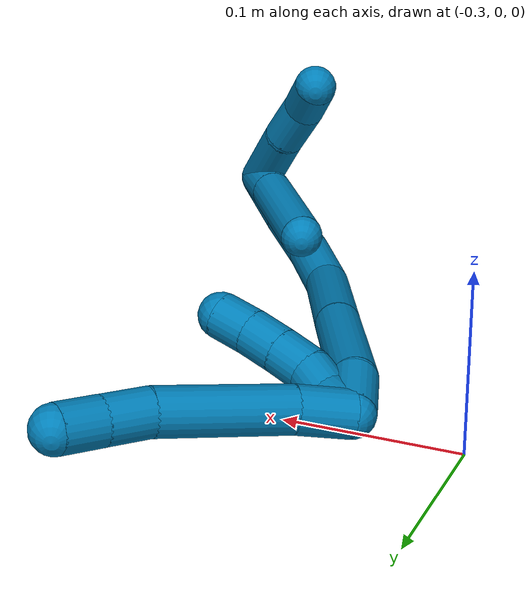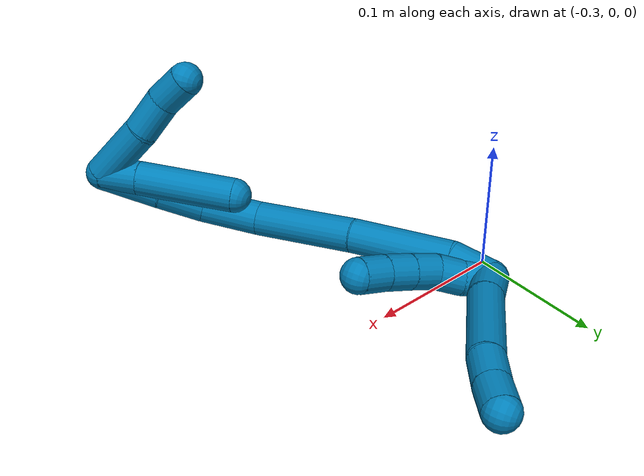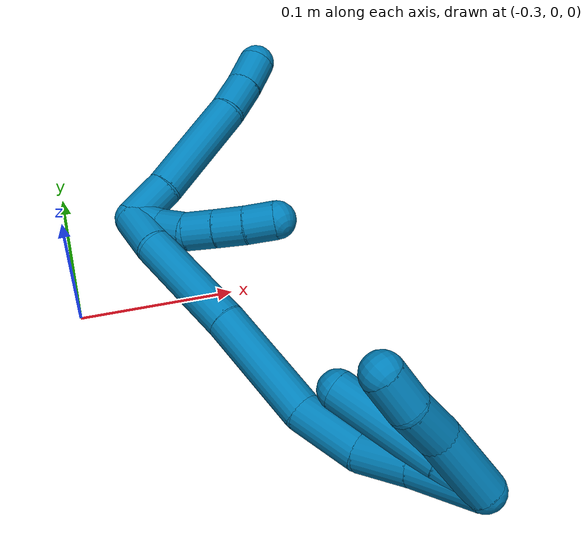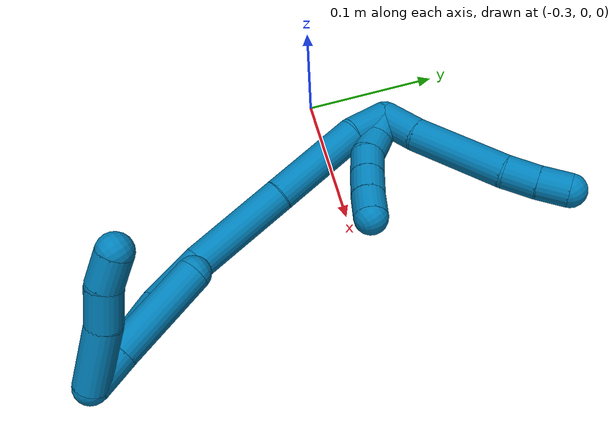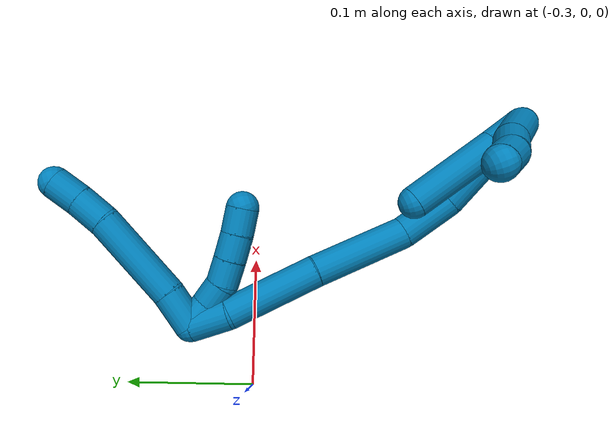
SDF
<sdf version="1.7">
 <world name="default">
  <model name="9">
   <static>0</static>
   <link name="9">
    <collision name="collision-cylinder-e_1_2_8">
     <pose>-0.009523 0.011007 -0.003048 -1.84097 -0.694996 0.888751</pose>
     <geometry><cylinder><radius>0.0125</radius><length>0.029742</length></cylinder></geometry>
     <surface>
      <friction><ode><mu>1.16</mu><mu2>1.16</mu2><slip1>0</slip1><slip2>0</slip2></ode></friction>
      <contact><ode><kp>1e+06</kp><kd>1</kd><max_vel>0</max_vel><min_depth>0.001</min_depth></ode></contact>
     </surface>
    </collision>
    <visual name="visual-cylinder-e_1_2_8">
     <pose>-0.009523 0.011007 -0.003048 -1.84097 -0.694996 0.888751</pose>
     <geometry><cylinder><radius>0.0125</radius><length>0.029742</length></cylinder></geometry>
     <material><ambient>0 0.490196 0.709804 1</ambient></material>
    </visual>
    <collision name="collision-cylinder-e_2_8_9">
     <pose>-0.040657 0.048295 -0.018114 -1.99967 -0.64213 0.955515</pose>
     <geometry><cylinder><radius>0.0125</radius><length>0.072169</length></cylinder></geometry>
     <surface>
      <friction><ode><mu>1.16</mu><mu2>1.16</mu2><slip1>0</slip1><slip2>0</slip2></ode></friction>
      <contact><ode><kp>1e+06</kp><kd>1</kd><max_vel>0</max_vel><min_depth>0.001</min_depth></ode></contact>
     </surface>
    </collision>
    <visual name="visual-cylinder-e_2_8_9">
     <pose>-0.040657 0.048295 -0.018114 -1.99967 -0.64213 0.955515</pose>
     <geometry><cylinder><radius>0.0125</radius><length>0.072169</length></cylinder></geometry>
     <material><ambient>0 0.490196 0.709804 1</ambient></material>
    </visual>
    <collision name="collision-cylinder-e_3_9_10">
     <pose>-0.068457 0.083543 -0.036025 -2.15227 -0.523082 0.921282</pose>
     <geometry><cylinder><radius>0.0125</radius><length>0.024776</length></cylinder></geometry>
     <surface>
      <friction><ode><mu>1.16</mu><mu2>1.16</mu2><slip1>0</slip1><slip2>0</slip2></ode></friction>
      <contact><ode><kp>1e+06</kp><kd>1</kd><max_vel>0</max_vel><min_depth>0.001</min_depth></ode></contact>
     </surface>
    </collision>
    <visual name="visual-cylinder-e_3_9_10">
     <pose>-0.068457 0.083543 -0.036025 -2.15227 -0.523082 0.921282</pose>
     <geometry><cylinder><radius>0.0125</radius><length>0.024776</length></cylinder></geometry>
     <material><ambient>0 0.490196 0.709804 1</ambient></material>
    </visual>
    <collision name="collision-cylinder-e_4_10_6">
     <pose>-0.080659 0.100344 -0.048112 -2.23975 -0.542116 1.04208</pose>
     <geometry><cylinder><radius>0.0125</radius><length>0.023314</length></cylinder></geometry>
     <surface>
      <friction><ode><mu>1.16</mu><mu2>1.16</mu2><slip1>0</slip1><slip2>0</slip2></ode></friction>
      <contact><ode><kp>1e+06</kp><kd>1</kd><max_vel>0</max_vel><min_depth>0.001</min_depth></ode></contact>
     </surface>
    </collision>
    <visual name="visual-cylinder-e_4_10_6">
     <pose>-0.080659 0.100344 -0.048112 -2.23975 -0.542116 1.04208</pose>
     <geometry><cylinder><radius>0.0125</radius><length>0.023314</length></cylinder></geometry>
     <material><ambient>0 0.490196 0.709804 1</ambient></material>
    </visual>
    <collision name="collision-cylinder-e_1_2_11">
     <pose>-0.002181 0.004626 0.008593 -0.493883 -0.219875 0.055638</pose>
     <geometry><cylinder><radius>0.0125</radius><length>0.02</length></cylinder></geometry>
     <surface>
      <friction><ode><mu>1.16</mu><mu2>1.16</mu2><slip1>0</slip1><slip2>0</slip2></ode></friction>
      <contact><ode><kp>1e+06</kp><kd>1</kd><max_vel>0</max_vel><min_depth>0.001</min_depth></ode></contact>
     </surface>
    </collision>
    <visual name="visual-cylinder-e_1_2_11">
     <pose>-0.002181 0.004626 0.008593 -0.493883 -0.219875 0.055638</pose>
     <geometry><cylinder><radius>0.0125</radius><length>0.02</length></cylinder></geometry>
     <material><ambient>0 0.490196 0.709804 1</ambient></material>
    </visual>
    <collision name="collision-cylinder-e_2_11_12">
     <pose>-0.008868 0.012243 0.025598 -0.341565 -0.46739 0.082061</pose>
     <geometry><cylinder><radius>0.0125</radius><length>0.02</length></cylinder></geometry>
     <surface>
      <friction><ode><mu>1.16</mu><mu2>1.16</mu2><slip1>0</slip1><slip2>0</slip2></ode></friction>
      <contact><ode><kp>1e+06</kp><kd>1</kd><max_vel>0</max_vel><min_depth>0.001</min_depth></ode></contact>
     </surface>
    </collision>
    <visual name="visual-cylinder-e_2_11_12">
     <pose>-0.008868 0.012243 0.025598 -0.341565 -0.46739 0.082061</pose>
     <geometry><cylinder><radius>0.0125</radius><length>0.02</length></cylinder></geometry>
     <material><ambient>0 0.490196 0.709804 1</ambient></material>
    </visual>
    <collision name="collision-cylinder-e_3_12_13">
     <pose>-0.018869 0.020595 0.040416 -0.696838 -0.581864 0.216675</pose>
     <geometry><cylinder><radius>0.0125</radius><length>0.02</length></cylinder></geometry>
     <surface>
      <friction><ode><mu>1.16</mu><mu2>1.16</mu2><slip1>0</slip1><slip2>0</slip2></ode></friction>
      <contact><ode><kp>1e+06</kp><kd>1</kd><max_vel>0</max_vel><min_depth>0.001</min_depth></ode></contact>
     </surface>
    </collision>
    <visual name="visual-cylinder-e_3_12_13">
     <pose>-0.018869 0.020595 0.040416 -0.696838 -0.581864 0.216675</pose>
     <geometry><cylinder><radius>0.0125</radius><length>0.02</length></cylinder></geometry>
     <material><ambient>0 0.490196 0.709804 1</ambient></material>
    </visual>
    <collision name="collision-cylinder-e_4_13_14">
     <pose>-0.029848 0.031584 0.05301 -0.737977 -0.580294 0.229898</pose>
     <geometry><cylinder><radius>0.0125</radius><length>0.02</length></cylinder></geometry>
     <surface>
      <friction><ode><mu>1.16</mu><mu2>1.16</mu2><slip1>0</slip1><slip2>0</slip2></ode></friction>
      <contact><ode><kp>1e+06</kp><kd>1</kd><max_vel>0</max_vel><min_depth>0.001</min_depth></ode></contact>
     </surface>
    </collision>
    <visual name="visual-cylinder-e_4_13_14">
     <pose>-0.029848 0.031584 0.05301 -0.737977 -0.580294 0.229898</pose>
     <geometry><cylinder><radius>0.0125</radius><length>0.02</length></cylinder></geometry>
     <material><ambient>0 0.490196 0.709804 1</ambient></material>
    </visual>
    <collision name="collision-cylinder-e_5_14_5">
     <pose>-0.040965 0.043298 0.064782 -0.828511 -0.59861 0.269714</pose>
     <geometry><cylinder><radius>0.0125</radius><length>0.02</length></cylinder></geometry>
     <surface>
      <friction><ode><mu>1.16</mu><mu2>1.16</mu2><slip1>0</slip1><slip2>0</slip2></ode></friction>
      <contact><ode><kp>1e+06</kp><kd>1</kd><max_vel>0</max_vel><min_depth>0.001</min_depth></ode></contact>
     </surface>
    </collision>
    <visual name="visual-cylinder-e_5_14_5">
     <pose>-0.040965 0.043298 0.064782 -0.828511 -0.59861 0.269714</pose>
     <geometry><cylinder><radius>0.0125</radius><length>0.02</length></cylinder></geometry>
     <material><ambient>0 0.490196 0.709804 1</ambient></material>
    </visual>
    <collision name="collision-cylinder-e_1_2_15">
     <pose>-0.000333 -0.001537 0.015199 0.100813 -0.021792 -0.001099</pose>
     <geometry><cylinder><radius>0.0125</radius><length>0.03056</length></cylinder></geometry>
     <surface>
      <friction><ode><mu>1.16</mu><mu2>1.16</mu2><slip1>0</slip1><slip2>0</slip2></ode></friction>
      <contact><ode><kp>1e+06</kp><kd>1</kd><max_vel>0</max_vel><min_depth>0.001</min_depth></ode></contact>
     </surface>
    </collision>
    <visual name="visual-cylinder-e_1_2_15">
     <pose>-0.000333 -0.001537 0.015199 0.100813 -0.021792 -0.001099</pose>
     <geometry><cylinder><radius>0.0125</radius><length>0.03056</length></cylinder></geometry>
     <material><ambient>0 0.490196 0.709804 1</ambient></material>
    </visual>
    <collision name="collision-cylinder-e_2_15_16">
     <pose>0.000985 0.001224 0.066675 -0.117956 0.045164 -0.002667</pose>
     <geometry><cylinder><radius>0.0125</radius><length>0.073137</length></cylinder></geometry>
     <surface>
      <friction><ode><mu>1.16</mu><mu2>1.16</mu2><slip1>0</slip1><slip2>0</slip2></ode></friction>
      <contact><ode><kp>1e+06</kp><kd>1</kd><max_vel>0</max_vel><min_depth>0.001</min_depth></ode></contact>
     </surface>
    </collision>
    <visual name="visual-cylinder-e_2_15_16">
     <pose>0.000985 0.001224 0.066675 -0.117956 0.045164 -0.002667</pose>
     <geometry><cylinder><radius>0.0125</radius><length>0.073137</length></cylinder></geometry>
     <material><ambient>0 0.490196 0.709804 1</ambient></material>
    </visual>
    <collision name="collision-cylinder-e_3_16_17">
     <pose>0.007371 0.010286 0.140033 -0.127746 0.125983 -0.008069</pose>
     <geometry><cylinder><radius>0.0125</radius><length>0.075368</length></cylinder></geometry>
     <surface>
      <friction><ode><mu>1.16</mu><mu2>1.16</mu2><slip1>0</slip1><slip2>0</slip2></ode></friction>
      <contact><ode><kp>1e+06</kp><kd>1</kd><max_vel>0</max_vel><min_depth>0.001</min_depth></ode></contact>
     </surface>
    </collision>
    <visual name="visual-cylinder-e_3_16_17">
     <pose>0.007371 0.010286 0.140033 -0.127746 0.125983 -0.008069</pose>
     <geometry><cylinder><radius>0.0125</radius><length>0.075368</length></cylinder></geometry>
     <material><ambient>0 0.490196 0.709804 1</ambient></material>
    </visual>
    <collision name="collision-cylinder-e_4_17_18">
     <pose>0.009069 0.019126 0.198131 -0.191607 -0.140946 0.013567</pose>
     <geometry><cylinder><radius>0.0125</radius><length>0.043246</length></cylinder></geometry>
     <surface>
      <friction><ode><mu>1.16</mu><mu2>1.16</mu2><slip1>0</slip1><slip2>0</slip2></ode></friction>
      <contact><ode><kp>1e+06</kp><kd>1</kd><max_vel>0</max_vel><min_depth>0.001</min_depth></ode></contact>
     </surface>
    </collision>
    <visual name="visual-cylinder-e_4_17_18">
     <pose>0.009069 0.019126 0.198131 -0.191607 -0.140946 0.013567</pose>
     <geometry><cylinder><radius>0.0125</radius><length>0.043246</length></cylinder></geometry>
     <material><ambient>0 0.490196 0.709804 1</ambient></material>
    </visual>
    <collision name="collision-cylinder-e_5_18_19">
     <pose>-0.001619 0.02716 0.23395 -0.2612 -0.463055 0.061912</pose>
     <geometry><cylinder><radius>0.0125</radius><length>0.034252</length></cylinder></geometry>
     <surface>
      <friction><ode><mu>1.16</mu><mu2>1.16</mu2><slip1>0</slip1><slip2>0</slip2></ode></friction>
      <contact><ode><kp>1e+06</kp><kd>1</kd><max_vel>0</max_vel><min_depth>0.001</min_depth></ode></contact>
     </surface>
    </collision>
    <visual name="visual-cylinder-e_5_18_19">
     <pose>-0.001619 0.02716 0.23395 -0.2612 -0.463055 0.061912</pose>
     <geometry><cylinder><radius>0.0125</radius><length>0.034252</length></cylinder></geometry>
     <material><ambient>0 0.490196 0.709804 1</ambient></material>
    </visual>
    <collision name="collision-cylinder-e_6_19_1">
     <pose>-0.018144 0.035376 0.268112 -0.21657 -0.421002 0.046447</pose>
     <geometry><cylinder><radius>0.0125</radius><length>0.043437</length></cylinder></geometry>
     <surface>
      <friction><ode><mu>1.16</mu><mu2>1.16</mu2><slip1>0</slip1><slip2>0</slip2></ode></friction>
      <contact><ode><kp>1e+06</kp><kd>1</kd><max_vel>0</max_vel><min_depth>0.001</min_depth></ode></contact>
     </surface>
    </collision>
    <visual name="visual-cylinder-e_6_19_1">
     <pose>-0.018144 0.035376 0.268112 -0.21657 -0.421002 0.046447</pose>
     <geometry><cylinder><radius>0.0125</radius><length>0.043437</length></cylinder></geometry>
     <material><ambient>0 0.490196 0.709804 1</ambient></material>
    </visual>
    <collision name="collision-cylinder-e_1_1_20">
     <pose>-0.039816 0.024095 0.275123 2.24221 -0.572617 -1.09537</pose>
     <geometry><cylinder><radius>0.0125</radius><length>0.047232</length></cylinder></geometry>
     <surface>
      <friction><ode><mu>1.16</mu><mu2>1.16</mu2><slip1>0</slip1><slip2>0</slip2></ode></friction>
      <contact><ode><kp>1e+06</kp><kd>1</kd><max_vel>0</max_vel><min_depth>0.001</min_depth></ode></contact>
     </surface>
    </collision>
    <visual name="visual-cylinder-e_1_1_20">
     <pose>-0.039816 0.024095 0.275123 2.24221 -0.572617 -1.09537</pose>
     <geometry><cylinder><radius>0.0125</radius><length>0.047232</length></cylinder></geometry>
     <material><ambient>0 0.490196 0.709804 1</ambient></material>
    </visual>
    <collision name="collision-cylinder-e_2_20_21">
     <pose>-0.059929 -0.002179 0.257124 2.05545 -0.542772 -0.863891</pose>
     <geometry><cylinder><radius>0.0125</radius><length>0.028334</length></cylinder></geometry>
     <surface>
      <friction><ode><mu>1.16</mu><mu2>1.16</mu2><slip1>0</slip1><slip2>0</slip2></ode></friction>
      <contact><ode><kp>1e+06</kp><kd>1</kd><max_vel>0</max_vel><min_depth>0.001</min_depth></ode></contact>
     </surface>
    </collision>
    <visual name="visual-cylinder-e_2_20_21">
     <pose>-0.059929 -0.002179 0.257124 2.05545 -0.542772 -0.863891</pose>
     <geometry><cylinder><radius>0.0125</radius><length>0.028334</length></cylinder></geometry>
     <material><ambient>0 0.490196 0.709804 1</ambient></material>
    </visual>
    <collision name="collision-cylinder-e_3_21_4">
     <pose>-0.073892 -0.020163 0.244223 2.35611 -0.575091 -1.23999</pose>
     <geometry><cylinder><radius>0.0125</radius><length>0.024435</length></cylinder></geometry>
     <surface>
      <friction><ode><mu>1.16</mu><mu2>1.16</mu2><slip1>0</slip1><slip2>0</slip2></ode></friction>
      <contact><ode><kp>1e+06</kp><kd>1</kd><max_vel>0</max_vel><min_depth>0.001</min_depth></ode></contact>
     </surface>
    </collision>
    <visual name="visual-cylinder-e_3_21_4">
     <pose>-0.073892 -0.020163 0.244223 2.35611 -0.575091 -1.23999</pose>
     <geometry><cylinder><radius>0.0125</radius><length>0.024435</length></cylinder></geometry>
     <material><ambient>0 0.490196 0.709804 1</ambient></material>
    </visual>
    <collision name="collision-cylinder-e_1_1_22">
     <pose>-0.025782 0.036065 0.273973 2.88302 0.088436 0.656072</pose>
     <geometry><cylinder><radius>0.0125</radius><length>0.028033</length></cylinder></geometry>
     <surface>
      <friction><ode><mu>1.16</mu><mu2>1.16</mu2><slip1>0</slip1><slip2>0</slip2></ode></friction>
      <contact><ode><kp>1e+06</kp><kd>1</kd><max_vel>0</max_vel><min_depth>0.001</min_depth></ode></contact>
     </surface>
    </collision>
    <visual name="visual-cylinder-e_1_1_22">
     <pose>-0.025782 0.036065 0.273973 2.88302 0.088436 0.656072</pose>
     <geometry><cylinder><radius>0.0125</radius><length>0.028033</length></cylinder></geometry>
     <material><ambient>0 0.490196 0.709804 1</ambient></material>
    </visual>
    <collision name="collision-cylinder-e_2_22_3">
     <pose>-0.021003 0.02443 0.225587 2.91441 0.098573 0.816201</pose>
     <geometry><cylinder><radius>0.0125</radius><length>0.071967</length></cylinder></geometry>
     <surface>
      <friction><ode><mu>1.16</mu><mu2>1.16</mu2><slip1>0</slip1><slip2>0</slip2></ode></friction>
      <contact><ode><kp>1e+06</kp><kd>1</kd><max_vel>0</max_vel><min_depth>0.001</min_depth></ode></contact>
     </surface>
    </collision>
    <visual name="visual-cylinder-e_2_22_3">
     <pose>-0.021003 0.02443 0.225587 2.91441 0.098573 0.816201</pose>
     <geometry><cylinder><radius>0.0125</radius><length>0.071967</length></cylinder></geometry>
     <material><ambient>0 0.490196 0.709804 1</ambient></material>
    </visual>
    <collision name="collision-sphere-3">
     <pose>-0.017462 0.016365 0.190698 0 -0 0</pose>
     <geometry><sphere><radius>0.0125</radius></sphere></geometry>
     <surface>
      <friction><ode><mu>1.16</mu><mu2>1.16</mu2><slip1>0</slip1><slip2>0</slip2></ode></friction>
      <contact><ode><kp>1e+06</kp><kd>1</kd><max_vel>0</max_vel><min_depth>0.001</min_depth></ode></contact>
     </surface>
    </collision>
    <visual name="visual-sphere-3">
     <pose>-0.017462 0.016365 0.190698 0 -0 0</pose>
     <geometry><sphere><radius>0.0125</radius></sphere></geometry>
     <material><ambient>0 0.490196 0.709804 1</ambient></material>
    </visual>
    <collision name="collision-sphere-22">
     <pose>-0.024544 0.032495 0.260475 0 -0 0</pose>
     <geometry><sphere><radius>0.0125</radius></sphere></geometry>
     <surface>
      <friction><ode><mu>1.16</mu><mu2>1.16</mu2><slip1>0</slip1><slip2>0</slip2></ode></friction>
      <contact><ode><kp>1e+06</kp><kd>1</kd><max_vel>0</max_vel><min_depth>0.001</min_depth></ode></contact>
     </surface>
    </collision>
    <visual name="visual-sphere-22">
     <pose>-0.024544 0.032495 0.260475 0 -0 0</pose>
     <geometry><sphere><radius>0.0125</radius></sphere></geometry>
     <material><ambient>0 0.490196 0.709804 1</ambient></material>
    </visual>
    <collision name="collision-sphere-4">
     <pose>-0.080537 -0.027413 0.236974 0 -0 0</pose>
     <geometry><sphere><radius>0.0125</radius></sphere></geometry>
     <surface>
      <friction><ode><mu>1.16</mu><mu2>1.16</mu2><slip1>0</slip1><slip2>0</slip2></ode></friction>
      <contact><ode><kp>1e+06</kp><kd>1</kd><max_vel>0</max_vel><min_depth>0.001</min_depth></ode></contact>
     </surface>
    </collision>
    <visual name="visual-sphere-4">
     <pose>-0.080537 -0.027413 0.236974 0 -0 0</pose>
     <geometry><sphere><radius>0.0125</radius></sphere></geometry>
     <material><ambient>0 0.490196 0.709804 1</ambient></material>
    </visual>
    <collision name="collision-sphere-21">
     <pose>-0.067247 -0.012913 0.251472 0 -0 0</pose>
     <geometry><sphere><radius>0.0125</radius></sphere></geometry>
     <surface>
      <friction><ode><mu>1.16</mu><mu2>1.16</mu2><slip1>0</slip1><slip2>0</slip2></ode></friction>
      <contact><ode><kp>1e+06</kp><kd>1</kd><max_vel>0</max_vel><min_depth>0.001</min_depth></ode></contact>
     </surface>
    </collision>
    <visual name="visual-sphere-21">
     <pose>-0.067247 -0.012913 0.251472 0 -0 0</pose>
     <geometry><sphere><radius>0.0125</radius></sphere></geometry>
     <material><ambient>0 0.490196 0.709804 1</ambient></material>
    </visual>
    <collision name="collision-sphere-20">
     <pose>-0.052612 0.008555 0.262775 0 -0 0</pose>
     <geometry><sphere><radius>0.0125</radius></sphere></geometry>
     <surface>
      <friction><ode><mu>1.16</mu><mu2>1.16</mu2><slip1>0</slip1><slip2>0</slip2></ode></friction>
      <contact><ode><kp>1e+06</kp><kd>1</kd><max_vel>0</max_vel><min_depth>0.001</min_depth></ode></contact>
     </surface>
    </collision>
    <visual name="visual-sphere-20">
     <pose>-0.052612 0.008555 0.262775 0 -0 0</pose>
     <geometry><sphere><radius>0.0125</radius></sphere></geometry>
     <material><ambient>0 0.490196 0.709804 1</ambient></material>
    </visual>
    <collision name="collision-sphere-11">
     <pose>-0.004362 0.009253 0.017186 0 -0 0</pose>
     <geometry><sphere><radius>0.0125</radius></sphere></geometry>
     <surface>
      <friction><ode><mu>1.16</mu><mu2>1.16</mu2><slip1>0</slip1><slip2>0</slip2></ode></friction>
      <contact><ode><kp>1e+06</kp><kd>1</kd><max_vel>0</max_vel><min_depth>0.001</min_depth></ode></contact>
     </surface>
    </collision>
    <visual name="visual-sphere-11">
     <pose>-0.004362 0.009253 0.017186 0 -0 0</pose>
     <geometry><sphere><radius>0.0125</radius></sphere></geometry>
     <material><ambient>0 0.490196 0.709804 1</ambient></material>
    </visual>
    <collision name="collision-sphere-6">
     <pose>-0.086674 0.108177 -0.054304 0 -0 0</pose>
     <geometry><sphere><radius>0.0125</radius></sphere></geometry>
     <surface>
      <friction><ode><mu>1.16</mu><mu2>1.16</mu2><slip1>0</slip1><slip2>0</slip2></ode></friction>
      <contact><ode><kp>1e+06</kp><kd>1</kd><max_vel>0</max_vel><min_depth>0.001</min_depth></ode></contact>
     </surface>
    </collision>
    <visual name="visual-sphere-6">
     <pose>-0.086674 0.108177 -0.054304 0 -0 0</pose>
     <geometry><sphere><radius>0.0125</radius></sphere></geometry>
     <material><ambient>0 0.490196 0.709804 1</ambient></material>
    </visual>
    <collision name="collision-sphere-10">
     <pose>-0.074645 0.09251 -0.041919 0 -0 0</pose>
     <geometry><sphere><radius>0.0125</radius></sphere></geometry>
     <surface>
      <friction><ode><mu>1.16</mu><mu2>1.16</mu2><slip1>0</slip1><slip2>0</slip2></ode></friction>
      <contact><ode><kp>1e+06</kp><kd>1</kd><max_vel>0</max_vel><min_depth>0.001</min_depth></ode></contact>
     </surface>
    </collision>
    <visual name="visual-sphere-10">
     <pose>-0.074645 0.09251 -0.041919 0 -0 0</pose>
     <geometry><sphere><radius>0.0125</radius></sphere></geometry>
     <material><ambient>0 0.490196 0.709804 1</ambient></material>
    </visual>
    <collision name="collision-sphere-9">
     <pose>-0.062268 0.074575 -0.030131 0 -0 0</pose>
     <geometry><sphere><radius>0.0125</radius></sphere></geometry>
     <surface>
      <friction><ode><mu>1.16</mu><mu2>1.16</mu2><slip1>0</slip1><slip2>0</slip2></ode></friction>
      <contact><ode><kp>1e+06</kp><kd>1</kd><max_vel>0</max_vel><min_depth>0.001</min_depth></ode></contact>
     </surface>
    </collision>
    <visual name="visual-sphere-9">
     <pose>-0.062268 0.074575 -0.030131 0 -0 0</pose>
     <geometry><sphere><radius>0.0125</radius></sphere></geometry>
     <material><ambient>0 0.490196 0.709804 1</ambient></material>
    </visual>
    <collision name="collision-sphere-2">
     <geometry><sphere><radius>0.0125</radius></sphere></geometry>
     <surface>
      <friction><ode><mu>1.16</mu><mu2>1.16</mu2><slip1>0</slip1><slip2>0</slip2></ode></friction>
      <contact><ode><kp>1e+06</kp><kd>1</kd><max_vel>0</max_vel><min_depth>0.001</min_depth></ode></contact>
     </surface>
    </collision>
    <visual name="visual-sphere-2">
     <geometry><sphere><radius>0.0125</radius></sphere></geometry>
     <material><ambient>0 0.490196 0.709804 1</ambient></material>
    </visual>
    <collision name="collision-sphere-19">
     <pose>-0.009269 0.031117 0.248753 0 -0 0</pose>
     <geometry><sphere><radius>0.0125</radius></sphere></geometry>
     <surface>
      <friction><ode><mu>1.16</mu><mu2>1.16</mu2><slip1>0</slip1><slip2>0</slip2></ode></friction>
      <contact><ode><kp>1e+06</kp><kd>1</kd><max_vel>0</max_vel><min_depth>0.001</min_depth></ode></contact>
     </surface>
    </collision>
    <visual name="visual-sphere-19">
     <pose>-0.009269 0.031117 0.248753 0 -0 0</pose>
     <geometry><sphere><radius>0.0125</radius></sphere></geometry>
     <material><ambient>0 0.490196 0.709804 1</ambient></material>
    </visual>
    <collision name="collision-sphere-8">
     <pose>-0.019046 0.022015 -0.006097 0 -0 0</pose>
     <geometry><sphere><radius>0.0125</radius></sphere></geometry>
     <surface>
      <friction><ode><mu>1.16</mu><mu2>1.16</mu2><slip1>0</slip1><slip2>0</slip2></ode></friction>
      <contact><ode><kp>1e+06</kp><kd>1</kd><max_vel>0</max_vel><min_depth>0.001</min_depth></ode></contact>
     </surface>
    </collision>
    <visual name="visual-sphere-8">
     <pose>-0.019046 0.022015 -0.006097 0 -0 0</pose>
     <geometry><sphere><radius>0.0125</radius></sphere></geometry>
     <material><ambient>0 0.490196 0.709804 1</ambient></material>
    </visual>
    <collision name="collision-sphere-12">
     <pose>-0.013373 0.015233 0.03401 0 -0 0</pose>
     <geometry><sphere><radius>0.0125</radius></sphere></geometry>
     <surface>
      <friction><ode><mu>1.16</mu><mu2>1.16</mu2><slip1>0</slip1><slip2>0</slip2></ode></friction>
      <contact><ode><kp>1e+06</kp><kd>1</kd><max_vel>0</max_vel><min_depth>0.001</min_depth></ode></contact>
     </surface>
    </collision>
    <visual name="visual-sphere-12">
     <pose>-0.013373 0.015233 0.03401 0 -0 0</pose>
     <geometry><sphere><radius>0.0125</radius></sphere></geometry>
     <material><ambient>0 0.490196 0.709804 1</ambient></material>
    </visual>
    <collision name="collision-sphere-13">
     <pose>-0.024365 0.025957 0.046823 0 -0 0</pose>
     <geometry><sphere><radius>0.0125</radius></sphere></geometry>
     <surface>
      <friction><ode><mu>1.16</mu><mu2>1.16</mu2><slip1>0</slip1><slip2>0</slip2></ode></friction>
      <contact><ode><kp>1e+06</kp><kd>1</kd><max_vel>0</max_vel><min_depth>0.001</min_depth></ode></contact>
     </surface>
    </collision>
    <visual name="visual-sphere-13">
     <pose>-0.024365 0.025957 0.046823 0 -0 0</pose>
     <geometry><sphere><radius>0.0125</radius></sphere></geometry>
     <material><ambient>0 0.490196 0.709804 1</ambient></material>
    </visual>
    <collision name="collision-sphere-14">
     <pose>-0.03533 0.03721 0.059198 0 -0 0</pose>
     <geometry><sphere><radius>0.0125</radius></sphere></geometry>
     <surface>
      <friction><ode><mu>1.16</mu><mu2>1.16</mu2><slip1>0</slip1><slip2>0</slip2></ode></friction>
      <contact><ode><kp>1e+06</kp><kd>1</kd><max_vel>0</max_vel><min_depth>0.001</min_depth></ode></contact>
     </surface>
    </collision>
    <visual name="visual-sphere-14">
     <pose>-0.03533 0.03721 0.059198 0 -0 0</pose>
     <geometry><sphere><radius>0.0125</radius></sphere></geometry>
     <material><ambient>0 0.490196 0.709804 1</ambient></material>
    </visual>
    <collision name="collision-sphere-5">
     <pose>-0.0466 0.049386 0.070366 0 -0 0</pose>
     <geometry><sphere><radius>0.0125</radius></sphere></geometry>
     <surface>
      <friction><ode><mu>1.16</mu><mu2>1.16</mu2><slip1>0</slip1><slip2>0</slip2></ode></friction>
      <contact><ode><kp>1e+06</kp><kd>1</kd><max_vel>0</max_vel><min_depth>0.001</min_depth></ode></contact>
     </surface>
    </collision>
    <visual name="visual-sphere-5">
     <pose>-0.0466 0.049386 0.070366 0 -0 0</pose>
     <geometry><sphere><radius>0.0125</radius></sphere></geometry>
     <material><ambient>0 0.490196 0.709804 1</ambient></material>
    </visual>
    <collision name="collision-sphere-15">
     <pose>-0.000666 -0.003075 0.030397 0 -0 0</pose>
     <geometry><sphere><radius>0.0125</radius></sphere></geometry>
     <surface>
      <friction><ode><mu>1.16</mu><mu2>1.16</mu2><slip1>0</slip1><slip2>0</slip2></ode></friction>
      <contact><ode><kp>1e+06</kp><kd>1</kd><max_vel>0</max_vel><min_depth>0.001</min_depth></ode></contact>
     </surface>
    </collision>
    <visual name="visual-sphere-15">
     <pose>-0.000666 -0.003075 0.030397 0 -0 0</pose>
     <geometry><sphere><radius>0.0125</radius></sphere></geometry>
     <material><ambient>0 0.490196 0.709804 1</ambient></material>
    </visual>
    <collision name="collision-sphere-16">
     <pose>0.002636 0.005523 0.102952 0 -0 0</pose>
     <geometry><sphere><radius>0.0125</radius></sphere></geometry>
     <surface>
      <friction><ode><mu>1.16</mu><mu2>1.16</mu2><slip1>0</slip1><slip2>0</slip2></ode></friction>
      <contact><ode><kp>1e+06</kp><kd>1</kd><max_vel>0</max_vel><min_depth>0.001</min_depth></ode></contact>
     </surface>
    </collision>
    <visual name="visual-sphere-16">
     <pose>0.002636 0.005523 0.102952 0 -0 0</pose>
     <geometry><sphere><radius>0.0125</radius></sphere></geometry>
     <material><ambient>0 0.490196 0.709804 1</ambient></material>
    </visual>
    <collision name="collision-sphere-17">
     <pose>0.012106 0.015049 0.177114 0 -0 0</pose>
     <geometry><sphere><radius>0.0125</radius></sphere></geometry>
     <surface>
      <friction><ode><mu>1.16</mu><mu2>1.16</mu2><slip1>0</slip1><slip2>0</slip2></ode></friction>
      <contact><ode><kp>1e+06</kp><kd>1</kd><max_vel>0</max_vel><min_depth>0.001</min_depth></ode></contact>
     </surface>
    </collision>
    <visual name="visual-sphere-17">
     <pose>0.012106 0.015049 0.177114 0 -0 0</pose>
     <geometry><sphere><radius>0.0125</radius></sphere></geometry>
     <material><ambient>0 0.490196 0.709804 1</ambient></material>
    </visual>
    <collision name="collision-sphere-18">
     <pose>0.006031 0.023203 0.219148 0 -0 0</pose>
     <geometry><sphere><radius>0.0125</radius></sphere></geometry>
     <surface>
      <friction><ode><mu>1.16</mu><mu2>1.16</mu2><slip1>0</slip1><slip2>0</slip2></ode></friction>
      <contact><ode><kp>1e+06</kp><kd>1</kd><max_vel>0</max_vel><min_depth>0.001</min_depth></ode></contact>
     </surface>
    </collision>
    <visual name="visual-sphere-18">
     <pose>0.006031 0.023203 0.219148 0 -0 0</pose>
     <geometry><sphere><radius>0.0125</radius></sphere></geometry>
     <material><ambient>0 0.490196 0.709804 1</ambient></material>
    </visual>
    <collision name="collision-sphere-1">
     <pose>-0.02702 0.039636 0.287471 0 -0 0</pose>
     <geometry><sphere><radius>0.0125</radius></sphere></geometry>
     <surface>
      <friction><ode><mu>1.16</mu><mu2>1.16</mu2><slip1>0</slip1><slip2>0</slip2></ode></friction>
      <contact><ode><kp>1e+06</kp><kd>1</kd><max_vel>0</max_vel><min_depth>0.001</min_depth></ode></contact>
     </surface>
    </collision>
    <visual name="visual-sphere-1">
     <pose>-0.02702 0.039636 0.287471 0 -0 0</pose>
     <geometry><sphere><radius>0.0125</radius></sphere></geometry>
     <material><ambient>0 0.490196 0.709804 1</ambient></material>
    </visual>
    <inertial>
     <pose>-0.021681 0.023911 0.126294 0 -0 0</pose>
     <mass>0.75</mass>
     <inertia>
      <ixx>0.000182</ixx>
      <ixy>0</ixy>
      <ixz>0</ixz>
      <iyy>0.000141</iyy>
      <iyz>0</iyz>
      <izz>1.8e-05</izz>
     </inertia>
    </inertial>
   </link>
   <pose>-0.255375 0.046401 0.035356 -1.39734 1.05998 -2.59516</pose>
  </model>
 </world>
</sdf>
